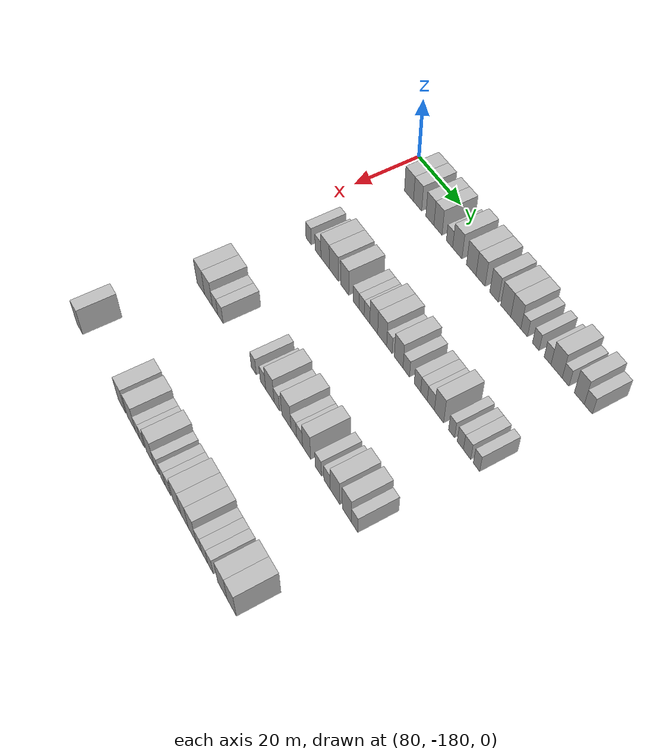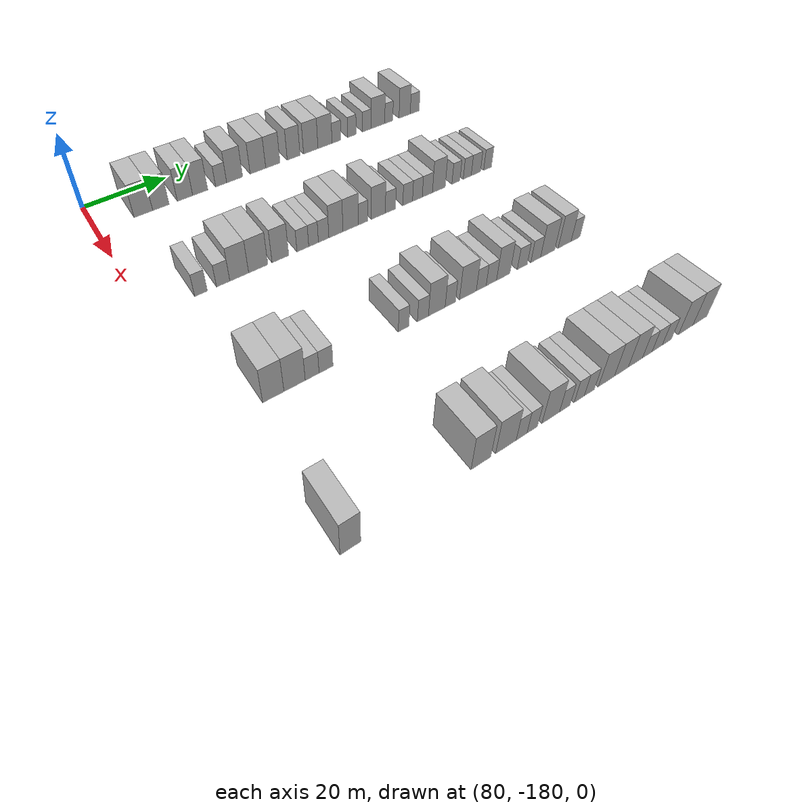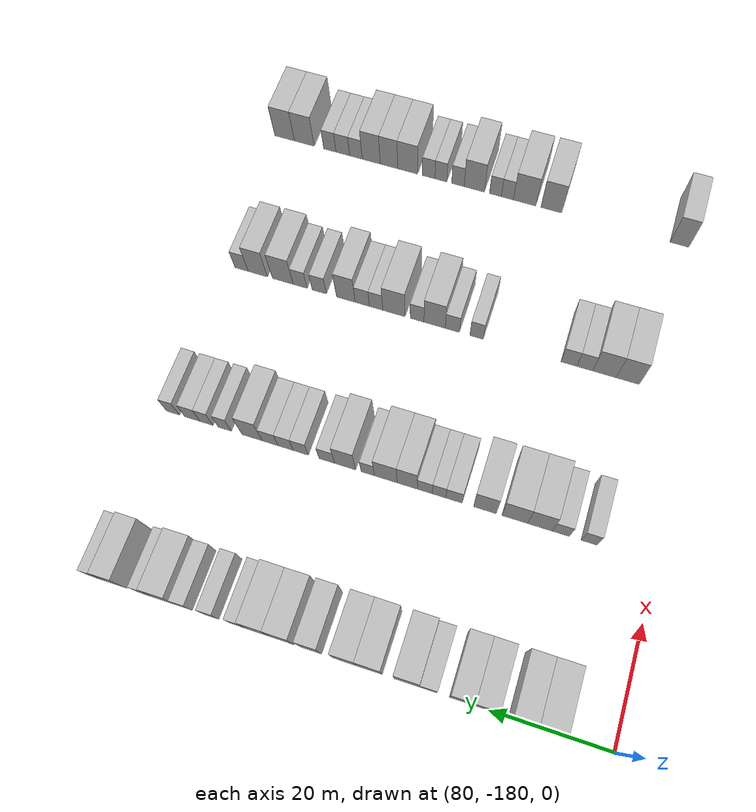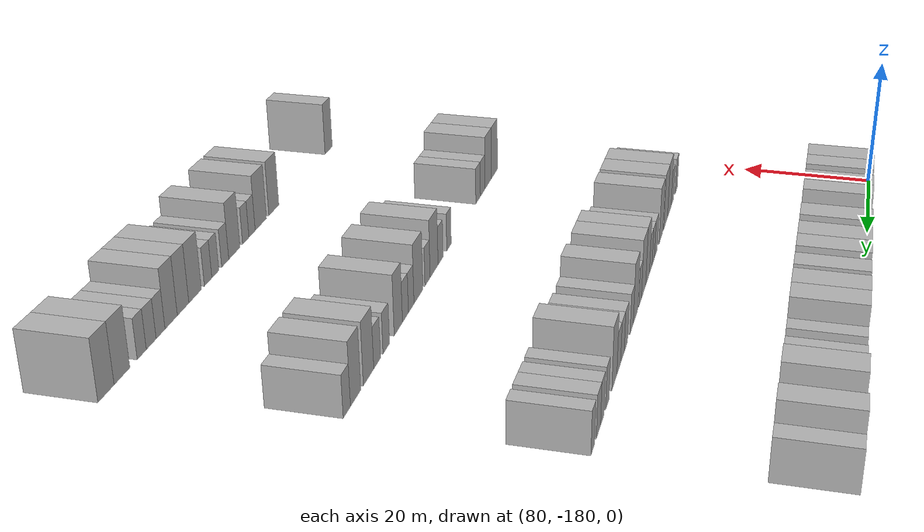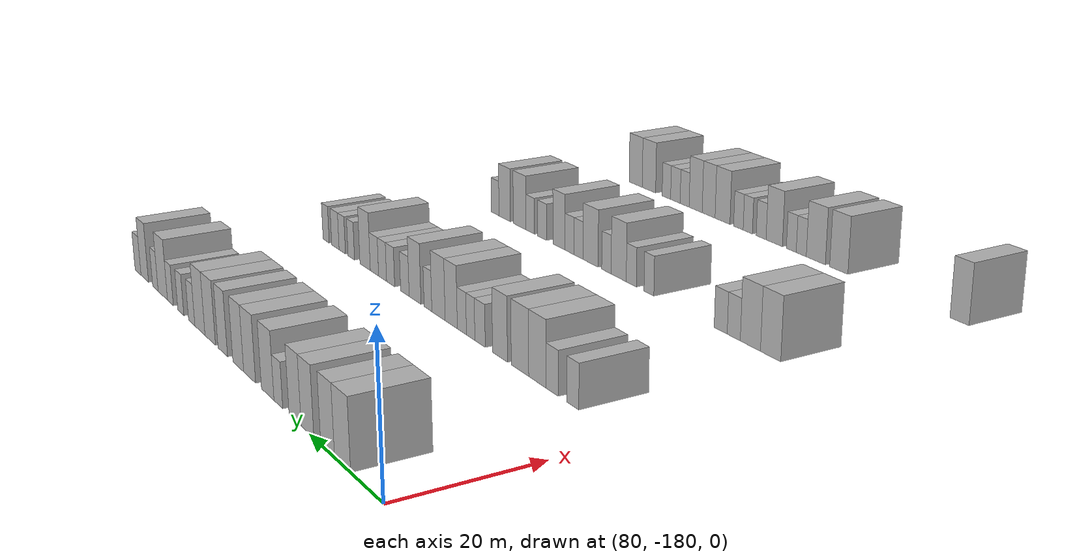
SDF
<sdf version="1.6">
 <world name="default">
  <model name="building_547">
   <static>1</static>
   <pose>85.0000 -169.3102 0 0.000000 0.000000 0.000000</pose>
   <link name="link">
    <pose>0 0 4.50 0 0 0</pose>
    <collision name="collision"><geometry><box><size>10.0000 4.3740 9.0000</size></box></geometry></collision>
    <visual name="visual">
     <cast_shadows>0</cast_shadows>
     <geometry><box><size>10.0000 4.3740 9.0000</size></box></geometry>
     <material>
      <script>
       <uri>model://HANNAS_wall/materials/scripts</uri>
       <uri>model://HANNAS_wall/materials/textures</uri>
       <name>vrc/HANNAS_wall</name>
      </script>
     </material>
    </visual>
   </link>
  </model>
  <model name="building_548">
   <static>1</static>
   <pose>85.0000 -165.1640 0 0.000000 0.000000 0.000000</pose>
   <link name="link">
    <pose>0 0 4.50 0 0 0</pose>
    <collision name="collision"><geometry><box><size>10.0000 3.9186 9.0000</size></box></geometry></collision>
    <visual name="visual">
     <cast_shadows>0</cast_shadows>
     <geometry><box><size>10.0000 3.9186 9.0000</size></box></geometry>
     <material>
      <script>
       <uri>model://HANNAS_wall/materials/scripts</uri>
       <uri>model://HANNAS_wall/materials/textures</uri>
       <name>vrc/HANNAS_wall</name>
      </script>
     </material>
    </visual>
   </link>
  </model>
  <model name="building_549">
   <static>1</static>
   <pose>85.0000 -159.3094 0 0.000000 0.000000 0.000000</pose>
   <link name="link">
    <pose>0 0 4.50 0 0 0</pose>
    <collision name="collision"><geometry><box><size>10.0000 3.7906 9.0000</size></box></geometry></collision>
    <visual name="visual">
     <cast_shadows>0</cast_shadows>
     <geometry><box><size>10.0000 3.7906 9.0000</size></box></geometry>
     <material>
      <script>
       <uri>model://HANNAS_wall/materials/scripts</uri>
       <uri>model://HANNAS_wall/materials/textures</uri>
       <name>vrc/HANNAS_wall</name>
      </script>
     </material>
    </visual>
   </link>
  </model>
  <model name="building_550">
   <static>1</static>
   <pose>85.0000 -155.5352 0 0.000000 0.000000 0.000000</pose>
   <link name="link">
    <pose>0 0 4.50 0 0 0</pose>
    <collision name="collision"><geometry><box><size>10.0000 3.7577 9.0000</size></box></geometry></collision>
    <visual name="visual">
     <cast_shadows>0</cast_shadows>
     <geometry><box><size>10.0000 3.7577 9.0000</size></box></geometry>
     <material>
      <script>
       <uri>model://HANNAS_wall/materials/scripts</uri>
       <uri>model://HANNAS_wall/materials/textures</uri>
       <name>vrc/HANNAS_wall</name>
      </script>
     </material>
    </visual>
   </link>
  </model>
  <model name="building_551">
   <static>1</static>
   <pose>85.0000 -150.2387 0 0.000000 0.000000 0.000000</pose>
   <link name="link">
    <pose>0 0 3.00 0 0 0</pose>
    <collision name="collision"><geometry><box><size>10.0000 2.8354 6.0000</size></box></geometry></collision>
    <visual name="visual">
     <cast_shadows>0</cast_shadows>
     <geometry><box><size>10.0000 2.8354 6.0000</size></box></geometry>
     <material>
      <script>
       <uri>model://HANNAS_wall/materials/scripts</uri>
       <uri>model://HANNAS_wall/materials/textures</uri>
       <name>vrc/HANNAS_wall</name>
      </script>
     </material>
    </visual>
   </link>
  </model>
  <model name="building_552">
   <static>1</static>
   <pose>85.0000 -146.7274 0 0.000000 0.000000 0.000000</pose>
   <link name="link">
    <pose>0 0 4.50 0 0 0</pose>
    <collision name="collision"><geometry><box><size>10.0000 4.1871 9.0000</size></box></geometry></collision>
    <visual name="visual">
     <cast_shadows>0</cast_shadows>
     <geometry><box><size>10.0000 4.1871 9.0000</size></box></geometry>
     <material>
      <script>
       <uri>model://HANNAS_wall/materials/scripts</uri>
       <uri>model://HANNAS_wall/materials/textures</uri>
       <name>vrc/HANNAS_wall</name>
      </script>
     </material>
    </visual>
   </link>
  </model>
  <model name="building_553">
   <static>1</static>
   <pose>85.0000 -140.5413 0 0.000000 0.000000 0.000000</pose>
   <link name="link">
    <pose>0 0 4.50 0 0 0</pose>
    <collision name="collision"><geometry><box><size>10.0000 4.1851 9.0000</size></box></geometry></collision>
    <visual name="visual">
     <cast_shadows>0</cast_shadows>
     <geometry><box><size>10.0000 4.1851 9.0000</size></box></geometry>
     <material>
      <script>
       <uri>model://HANNAS_wall/materials/scripts</uri>
       <uri>model://HANNAS_wall/materials/textures</uri>
       <name>vrc/HANNAS_wall</name>
      </script>
     </material>
    </visual>
   </link>
  </model>
  <model name="building_554">
   <static>1</static>
   <pose>85.0000 -136.4818 0 0.000000 0.000000 0.000000</pose>
   <link name="link">
    <pose>0 0 4.50 0 0 0</pose>
    <collision name="collision"><geometry><box><size>10.0000 3.9339 9.0000</size></box></geometry></collision>
    <visual name="visual">
     <cast_shadows>0</cast_shadows>
     <geometry><box><size>10.0000 3.9339 9.0000</size></box></geometry>
     <material>
      <script>
       <uri>model://HANNAS_wall/materials/scripts</uri>
       <uri>model://HANNAS_wall/materials/textures</uri>
       <name>vrc/HANNAS_wall</name>
      </script>
     </material>
    </visual>
   </link>
  </model>
  <model name="building_555">
   <static>1</static>
   <pose>85.0000 -130.7133 0 0.000000 0.000000 0.000000</pose>
   <link name="link">
    <pose>0 0 4.50 0 0 0</pose>
    <collision name="collision"><geometry><box><size>10.0000 3.6031 9.0000</size></box></geometry></collision>
    <visual name="visual">
     <cast_shadows>0</cast_shadows>
     <geometry><box><size>10.0000 3.6031 9.0000</size></box></geometry>
     <material>
      <script>
       <uri>model://HANNAS_wall/materials/scripts</uri>
       <uri>model://HANNAS_wall/materials/textures</uri>
       <name>vrc/HANNAS_wall</name>
      </script>
     </material>
    </visual>
   </link>
  </model>
  <model name="building_556">
   <static>1</static>
   <pose>85.0000 -125.8333 0 0.000000 0.000000 0.000000</pose>
   <link name="link">
    <pose>0 0 4.50 0 0 0</pose>
    <collision name="collision"><geometry><box><size>10.0000 4.1570 9.0000</size></box></geometry></collision>
    <visual name="visual">
     <cast_shadows>0</cast_shadows>
     <geometry><box><size>10.0000 4.1570 9.0000</size></box></geometry>
     <material>
      <script>
       <uri>model://HANNAS_wall/materials/scripts</uri>
       <uri>model://HANNAS_wall/materials/textures</uri>
       <name>vrc/HANNAS_wall</name>
      </script>
     </material>
    </visual>
   </link>
  </model>
  <model name="building_557">
   <static>1</static>
   <pose>85.0000 -121.6883 0 0.000000 0.000000 0.000000</pose>
   <link name="link">
    <pose>0 0 4.50 0 0 0</pose>
    <collision name="collision"><geometry><box><size>10.0000 4.1330 9.0000</size></box></geometry></collision>
    <visual name="visual">
     <cast_shadows>0</cast_shadows>
     <geometry><box><size>10.0000 4.1330 9.0000</size></box></geometry>
     <material>
      <script>
       <uri>model://HANNAS_wall/materials/scripts</uri>
       <uri>model://HANNAS_wall/materials/textures</uri>
       <name>vrc/HANNAS_wall</name>
      </script>
     </material>
    </visual>
   </link>
  </model>
  <model name="building_558">
   <static>1</static>
   <pose>85.0000 -118.2937 0 0.000000 0.000000 0.000000</pose>
   <link name="link">
    <pose>0 0 3.00 0 0 0</pose>
    <collision name="collision"><geometry><box><size>10.0000 2.6562 6.0000</size></box></geometry></collision>
    <visual name="visual">
     <cast_shadows>0</cast_shadows>
     <geometry><box><size>10.0000 2.6562 6.0000</size></box></geometry>
     <material>
      <script>
       <uri>model://HANNAS_wall/materials/scripts</uri>
       <uri>model://HANNAS_wall/materials/textures</uri>
       <name>vrc/HANNAS_wall</name>
      </script>
     </material>
    </visual>
   </link>
  </model>
  <model name="building_559">
   <static>1</static>
   <pose>85.0000 -113.6614 0 0.000000 0.000000 0.000000</pose>
   <link name="link">
    <pose>0 0 3.00 0 0 0</pose>
    <collision name="collision"><geometry><box><size>10.0000 2.6083 6.0000</size></box></geometry></collision>
    <visual name="visual">
     <cast_shadows>0</cast_shadows>
     <geometry><box><size>10.0000 2.6083 6.0000</size></box></geometry>
     <material>
      <script>
       <uri>model://HANNAS_wall/materials/scripts</uri>
       <uri>model://HANNAS_wall/materials/textures</uri>
       <name>vrc/HANNAS_wall</name>
      </script>
     </material>
    </visual>
   </link>
  </model>
  <model name="building_560">
   <static>1</static>
   <pose>85.0000 -109.0455 0 0.000000 0.000000 0.000000</pose>
   <link name="link">
    <pose>0 0 3.00 0 0 0</pose>
    <collision name="collision"><geometry><box><size>10.0000 2.6236 6.0000</size></box></geometry></collision>
    <visual name="visual">
     <cast_shadows>0</cast_shadows>
     <geometry><box><size>10.0000 2.6236 6.0000</size></box></geometry>
     <material>
      <script>
       <uri>model://HANNAS_wall/materials/scripts</uri>
       <uri>model://HANNAS_wall/materials/textures</uri>
       <name>vrc/HANNAS_wall</name>
      </script>
     </material>
    </visual>
   </link>
  </model>
  <model name="building_561">
   <static>1</static>
   <pose>85.0000 -105.5819 0 0.000000 0.000000 0.000000</pose>
   <link name="link">
    <pose>0 0 4.50 0 0 0</pose>
    <collision name="collision"><geometry><box><size>10.0000 4.3037 9.0000</size></box></geometry></collision>
    <visual name="visual">
     <cast_shadows>0</cast_shadows>
     <geometry><box><size>10.0000 4.3037 9.0000</size></box></geometry>
     <material>
      <script>
       <uri>model://HANNAS_wall/materials/scripts</uri>
       <uri>model://HANNAS_wall/materials/textures</uri>
       <name>vrc/HANNAS_wall</name>
      </script>
     </material>
    </visual>
   </link>
  </model>
  <model name="building_562">
   <static>1</static>
   <pose>85.0000 -102.1422 0 0.000000 0.000000 0.000000</pose>
   <link name="link">
    <pose>0 0 3.00 0 0 0</pose>
    <collision name="collision"><geometry><box><size>10.0000 2.5757 6.0000</size></box></geometry></collision>
    <visual name="visual">
     <cast_shadows>0</cast_shadows>
     <geometry><box><size>10.0000 2.5757 6.0000</size></box></geometry>
     <material>
      <script>
       <uri>model://HANNAS_wall/materials/scripts</uri>
       <uri>model://HANNAS_wall/materials/textures</uri>
       <name>vrc/HANNAS_wall</name>
      </script>
     </material>
    </visual>
   </link>
  </model>
  <model name="building_563">
   <static>1</static>
   <pose>85.0000 -97.0147 0 0.000000 0.000000 0.000000</pose>
   <link name="link">
    <pose>0 0 4.50 0 0 0</pose>
    <collision name="collision"><geometry><box><size>10.0000 3.6792 9.0000</size></box></geometry></collision>
    <visual name="visual">
     <cast_shadows>0</cast_shadows>
     <geometry><box><size>10.0000 3.6792 9.0000</size></box></geometry>
     <material>
      <script>
       <uri>model://HANNAS_wall/materials/scripts</uri>
       <uri>model://HANNAS_wall/materials/textures</uri>
       <name>vrc/HANNAS_wall</name>
      </script>
     </material>
    </visual>
   </link>
  </model>
  <model name="building_564">
   <static>1</static>
   <pose>85.0000 -93.7033 0 0.000000 0.000000 0.000000</pose>
   <link name="link">
    <pose>0 0 3.00 0 0 0</pose>
    <collision name="collision"><geometry><box><size>10.0000 2.9437 6.0000</size></box></geometry></collision>
    <visual name="visual">
     <cast_shadows>0</cast_shadows>
     <geometry><box><size>10.0000 2.9437 6.0000</size></box></geometry>
     <material>
      <script>
       <uri>model://HANNAS_wall/materials/scripts</uri>
       <uri>model://HANNAS_wall/materials/textures</uri>
       <name>vrc/HANNAS_wall</name>
      </script>
     </material>
    </visual>
   </link>
  </model>
  <model name="building_784">
   <static>1</static>
   <pose>115.0000 -168.7538 0 0.000000 0.000000 0.000000</pose>
   <link name="link">
    <pose>0 0 3.00 0 0 0</pose>
    <collision name="collision"><geometry><box><size>10.0000 2.7302 6.0000</size></box></geometry></collision>
    <visual name="visual">
     <cast_shadows>0</cast_shadows>
     <geometry><box><size>10.0000 2.7302 6.0000</size></box></geometry>
     <material>
      <script>
       <uri>model://HANNAS_wall/materials/scripts</uri>
       <uri>model://HANNAS_wall/materials/textures</uri>
       <name>vrc/HANNAS_wall</name>
      </script>
     </material>
    </visual>
   </link>
  </model>
  <model name="building_785">
   <static>1</static>
   <pose>115.0000 -163.9118 0 0.000000 0.000000 0.000000</pose>
   <link name="link">
    <pose>0 0 3.00 0 0 0</pose>
    <collision name="collision"><geometry><box><size>10.0000 2.9538 6.0000</size></box></geometry></collision>
    <visual name="visual">
     <cast_shadows>0</cast_shadows>
     <geometry><box><size>10.0000 2.9538 6.0000</size></box></geometry>
     <material>
      <script>
       <uri>model://HANNAS_wall/materials/scripts</uri>
       <uri>model://HANNAS_wall/materials/textures</uri>
       <name>vrc/HANNAS_wall</name>
      </script>
     </material>
    </visual>
   </link>
  </model>
  <model name="building_786">
   <static>1</static>
   <pose>115.0000 -160.3102 0 0.000000 0.000000 0.000000</pose>
   <link name="link">
    <pose>0 0 4.50 0 0 0</pose>
    <collision name="collision"><geometry><box><size>10.0000 4.2494 9.0000</size></box></geometry></collision>
    <visual name="visual">
     <cast_shadows>0</cast_shadows>
     <geometry><box><size>10.0000 4.2494 9.0000</size></box></geometry>
     <material>
      <script>
       <uri>model://HANNAS_wall/materials/scripts</uri>
       <uri>model://HANNAS_wall/materials/textures</uri>
       <name>vrc/HANNAS_wall</name>
      </script>
     </material>
    </visual>
   </link>
  </model>
  <model name="building_787">
   <static>1</static>
   <pose>115.0000 -155.9661 0 0.000000 0.000000 0.000000</pose>
   <link name="link">
    <pose>0 0 4.50 0 0 0</pose>
    <collision name="collision"><geometry><box><size>10.0000 4.4389 9.0000</size></box></geometry></collision>
    <visual name="visual">
     <cast_shadows>0</cast_shadows>
     <geometry><box><size>10.0000 4.4389 9.0000</size></box></geometry>
     <material>
      <script>
       <uri>model://HANNAS_wall/materials/scripts</uri>
       <uri>model://HANNAS_wall/materials/textures</uri>
       <name>vrc/HANNAS_wall</name>
      </script>
     </material>
    </visual>
   </link>
  </model>
  <model name="building_788">
   <static>1</static>
   <pose>115.0000 -150.7684 0 0.000000 0.000000 0.000000</pose>
   <link name="link">
    <pose>0 0 4.50 0 0 0</pose>
    <collision name="collision"><geometry><box><size>10.0000 3.9566 9.0000</size></box></geometry></collision>
    <visual name="visual">
     <cast_shadows>0</cast_shadows>
     <geometry><box><size>10.0000 3.9566 9.0000</size></box></geometry>
     <material>
      <script>
       <uri>model://HANNAS_wall/materials/scripts</uri>
       <uri>model://HANNAS_wall/materials/textures</uri>
       <name>vrc/HANNAS_wall</name>
      </script>
     </material>
    </visual>
   </link>
  </model>
  <model name="building_789">
   <static>1</static>
   <pose>115.0000 -145.3490 0 0.000000 0.000000 0.000000</pose>
   <link name="link">
    <pose>0 0 3.00 0 0 0</pose>
    <collision name="collision"><geometry><box><size>10.0000 2.8821 6.0000</size></box></geometry></collision>
    <visual name="visual">
     <cast_shadows>0</cast_shadows>
     <geometry><box><size>10.0000 2.8821 6.0000</size></box></geometry>
     <material>
      <script>
       <uri>model://HANNAS_wall/materials/scripts</uri>
       <uri>model://HANNAS_wall/materials/textures</uri>
       <name>vrc/HANNAS_wall</name>
      </script>
     </material>
    </visual>
   </link>
  </model>
  <model name="building_790">
   <static>1</static>
   <pose>115.0000 -142.7071 0 0.000000 0.000000 0.000000</pose>
   <link name="link">
    <pose>0 0 3.00 0 0 0</pose>
    <collision name="collision"><geometry><box><size>10.0000 2.4017 6.0000</size></box></geometry></collision>
    <visual name="visual">
     <cast_shadows>0</cast_shadows>
     <geometry><box><size>10.0000 2.4017 6.0000</size></box></geometry>
     <material>
      <script>
       <uri>model://HANNAS_wall/materials/scripts</uri>
       <uri>model://HANNAS_wall/materials/textures</uri>
       <name>vrc/HANNAS_wall</name>
      </script>
     </material>
    </visual>
   </link>
  </model>
  <model name="building_791">
   <static>1</static>
   <pose>115.0000 -140.1959 0 0.000000 0.000000 0.000000</pose>
   <link name="link">
    <pose>0 0 3.00 0 0 0</pose>
    <collision name="collision"><geometry><box><size>10.0000 2.6207 6.0000</size></box></geometry></collision>
    <visual name="visual">
     <cast_shadows>0</cast_shadows>
     <geometry><box><size>10.0000 2.6207 6.0000</size></box></geometry>
     <material>
      <script>
       <uri>model://HANNAS_wall/materials/scripts</uri>
       <uri>model://HANNAS_wall/materials/textures</uri>
       <name>vrc/HANNAS_wall</name>
      </script>
     </material>
    </visual>
   </link>
  </model>
  <model name="building_792">
   <static>1</static>
   <pose>115.0000 -137.0826 0 0.000000 0.000000 0.000000</pose>
   <link name="link">
    <pose>0 0 4.50 0 0 0</pose>
    <collision name="collision"><geometry><box><size>10.0000 3.6060 9.0000</size></box></geometry></collision>
    <visual name="visual">
     <cast_shadows>0</cast_shadows>
     <geometry><box><size>10.0000 3.6060 9.0000</size></box></geometry>
     <material>
      <script>
       <uri>model://HANNAS_wall/materials/scripts</uri>
       <uri>model://HANNAS_wall/materials/textures</uri>
       <name>vrc/HANNAS_wall</name>
      </script>
     </material>
    </visual>
   </link>
  </model>
  <model name="building_793">
   <static>1</static>
   <pose>115.0000 -133.2486 0 0.000000 0.000000 0.000000</pose>
   <link name="link">
    <pose>0 0 4.50 0 0 0</pose>
    <collision name="collision"><geometry><box><size>10.0000 4.0619 9.0000</size></box></geometry></collision>
    <visual name="visual">
     <cast_shadows>0</cast_shadows>
     <geometry><box><size>10.0000 4.0619 9.0000</size></box></geometry>
     <material>
      <script>
       <uri>model://HANNAS_wall/materials/scripts</uri>
       <uri>model://HANNAS_wall/materials/textures</uri>
       <name>vrc/HANNAS_wall</name>
      </script>
     </material>
    </visual>
   </link>
  </model>
  <model name="building_794">
   <static>1</static>
   <pose>115.0000 -130.0116 0 0.000000 0.000000 0.000000</pose>
   <link name="link">
    <pose>0 0 3.00 0 0 0</pose>
    <collision name="collision"><geometry><box><size>10.0000 2.4121 6.0000</size></box></geometry></collision>
    <visual name="visual">
     <cast_shadows>0</cast_shadows>
     <geometry><box><size>10.0000 2.4121 6.0000</size></box></geometry>
     <material>
      <script>
       <uri>model://HANNAS_wall/materials/scripts</uri>
       <uri>model://HANNAS_wall/materials/textures</uri>
       <name>vrc/HANNAS_wall</name>
      </script>
     </material>
    </visual>
   </link>
  </model>
  <model name="building_795">
   <static>1</static>
   <pose>115.0000 -125.9079 0 0.000000 0.000000 0.000000</pose>
   <link name="link">
    <pose>0 0 4.50 0 0 0</pose>
    <collision name="collision"><geometry><box><size>10.0000 3.7953 9.0000</size></box></geometry></collision>
    <visual name="visual">
     <cast_shadows>0</cast_shadows>
     <geometry><box><size>10.0000 3.7953 9.0000</size></box></geometry>
     <material>
      <script>
       <uri>model://HANNAS_wall/materials/scripts</uri>
       <uri>model://HANNAS_wall/materials/textures</uri>
       <name>vrc/HANNAS_wall</name>
      </script>
     </material>
    </visual>
   </link>
  </model>
  <model name="building_796">
   <static>1</static>
   <pose>115.0000 -122.6027 0 0.000000 0.000000 0.000000</pose>
   <link name="link">
    <pose>0 0 3.00 0 0 0</pose>
    <collision name="collision"><geometry><box><size>10.0000 2.8150 6.0000</size></box></geometry></collision>
    <visual name="visual">
     <cast_shadows>0</cast_shadows>
     <geometry><box><size>10.0000 2.8150 6.0000</size></box></geometry>
     <material>
      <script>
       <uri>model://HANNAS_wall/materials/scripts</uri>
       <uri>model://HANNAS_wall/materials/textures</uri>
       <name>vrc/HANNAS_wall</name>
      </script>
     </material>
    </visual>
   </link>
  </model>
  <model name="building_797">
   <static>1</static>
   <pose>115.0000 -117.8180 0 0.000000 0.000000 0.000000</pose>
   <link name="link">
    <pose>0 0 3.00 0 0 0</pose>
    <collision name="collision"><geometry><box><size>10.0000 2.7544 6.0000</size></box></geometry></collision>
    <visual name="visual">
     <cast_shadows>0</cast_shadows>
     <geometry><box><size>10.0000 2.7544 6.0000</size></box></geometry>
     <material>
      <script>
       <uri>model://HANNAS_wall/materials/scripts</uri>
       <uri>model://HANNAS_wall/materials/textures</uri>
       <name>vrc/HANNAS_wall</name>
      </script>
     </material>
    </visual>
   </link>
  </model>
  <model name="building_798">
   <static>1</static>
   <pose>115.0000 -115.0493 0 0.000000 0.000000 0.000000</pose>
   <link name="link">
    <pose>0 0 3.00 0 0 0</pose>
    <collision name="collision"><geometry><box><size>10.0000 2.7830 6.0000</size></box></geometry></collision>
    <visual name="visual">
     <cast_shadows>0</cast_shadows>
     <geometry><box><size>10.0000 2.7830 6.0000</size></box></geometry>
     <material>
      <script>
       <uri>model://HANNAS_wall/materials/scripts</uri>
       <uri>model://HANNAS_wall/materials/textures</uri>
       <name>vrc/HANNAS_wall</name>
      </script>
     </material>
    </visual>
   </link>
  </model>
  <model name="building_799">
   <static>1</static>
   <pose>115.0000 -112.1875 0 0.000000 0.000000 0.000000</pose>
   <link name="link">
    <pose>0 0 3.00 0 0 0</pose>
    <collision name="collision"><geometry><box><size>10.0000 2.9405 6.0000</size></box></geometry></collision>
    <visual name="visual">
     <cast_shadows>0</cast_shadows>
     <geometry><box><size>10.0000 2.9405 6.0000</size></box></geometry>
     <material>
      <script>
       <uri>model://HANNAS_wall/materials/scripts</uri>
       <uri>model://HANNAS_wall/materials/textures</uri>
       <name>vrc/HANNAS_wall</name>
      </script>
     </material>
    </visual>
   </link>
  </model>
  <model name="building_800">
   <static>1</static>
   <pose>115.0000 -108.8350 0 0.000000 0.000000 0.000000</pose>
   <link name="link">
    <pose>0 0 4.50 0 0 0</pose>
    <collision name="collision"><geometry><box><size>10.0000 3.7645 9.0000</size></box></geometry></collision>
    <visual name="visual">
     <cast_shadows>0</cast_shadows>
     <geometry><box><size>10.0000 3.7645 9.0000</size></box></geometry>
     <material>
      <script>
       <uri>model://HANNAS_wall/materials/scripts</uri>
       <uri>model://HANNAS_wall/materials/textures</uri>
       <name>vrc/HANNAS_wall</name>
      </script>
     </material>
    </visual>
   </link>
  </model>
  <model name="building_801">
   <static>1</static>
   <pose>115.0000 -103.7379 0 0.000000 0.000000 0.000000</pose>
   <link name="link">
    <pose>0 0 3.00 0 0 0</pose>
    <collision name="collision"><geometry><box><size>10.0000 2.4298 6.0000</size></box></geometry></collision>
    <visual name="visual">
     <cast_shadows>0</cast_shadows>
     <geometry><box><size>10.0000 2.4298 6.0000</size></box></geometry>
     <material>
      <script>
       <uri>model://HANNAS_wall/materials/scripts</uri>
       <uri>model://HANNAS_wall/materials/textures</uri>
       <name>vrc/HANNAS_wall</name>
      </script>
     </material>
    </visual>
   </link>
  </model>
  <model name="building_802">
   <static>1</static>
   <pose>115.0000 -100.2994 0 0.000000 0.000000 0.000000</pose>
   <link name="link">
    <pose>0 0 3.00 0 0 0</pose>
    <collision name="collision"><geometry><box><size>10.0000 2.4471 6.0000</size></box></geometry></collision>
    <visual name="visual">
     <cast_shadows>0</cast_shadows>
     <geometry><box><size>10.0000 2.4471 6.0000</size></box></geometry>
     <material>
      <script>
       <uri>model://HANNAS_wall/materials/scripts</uri>
       <uri>model://HANNAS_wall/materials/textures</uri>
       <name>vrc/HANNAS_wall</name>
      </script>
     </material>
    </visual>
   </link>
  </model>
  <model name="building_803">
   <static>1</static>
   <pose>115.0000 -97.6379 0 0.000000 0.000000 0.000000</pose>
   <link name="link">
    <pose>0 0 3.00 0 0 0</pose>
    <collision name="collision"><geometry><box><size>10.0000 2.8759 6.0000</size></box></geometry></collision>
    <visual name="visual">
     <cast_shadows>0</cast_shadows>
     <geometry><box><size>10.0000 2.8759 6.0000</size></box></geometry>
     <material>
      <script>
       <uri>model://HANNAS_wall/materials/scripts</uri>
       <uri>model://HANNAS_wall/materials/textures</uri>
       <name>vrc/HANNAS_wall</name>
      </script>
     </material>
    </visual>
   </link>
  </model>
  <model name="building_804">
   <static>1</static>
   <pose>115.0000 -93.9739 0 0.000000 0.000000 0.000000</pose>
   <link name="link">
    <pose>0 0 3.00 0 0 0</pose>
    <collision name="collision"><geometry><box><size>10.0000 2.4521 6.0000</size></box></geometry></collision>
    <visual name="visual">
     <cast_shadows>0</cast_shadows>
     <geometry><box><size>10.0000 2.4521 6.0000</size></box></geometry>
     <material>
      <script>
       <uri>model://HANNAS_wall/materials/scripts</uri>
       <uri>model://HANNAS_wall/materials/textures</uri>
       <name>vrc/HANNAS_wall</name>
      </script>
     </material>
    </visual>
   </link>
  </model>
  <model name="building_1021">
   <static>1</static>
   <pose>145.0000 -168.5334 0 0.000000 0.000000 0.000000</pose>
   <link name="link">
    <pose>0 0 4.50 0 0 0</pose>
    <collision name="collision"><geometry><box><size>10.0000 4.2034 9.0000</size></box></geometry></collision>
    <visual name="visual">
     <cast_shadows>0</cast_shadows>
     <geometry><box><size>10.0000 4.2034 9.0000</size></box></geometry>
     <material>
      <script>
       <uri>model://HANNAS_wall/materials/scripts</uri>
       <uri>model://HANNAS_wall/materials/textures</uri>
       <name>vrc/HANNAS_wall</name>
      </script>
     </material>
    </visual>
   </link>
  </model>
  <model name="building_1022">
   <static>1</static>
   <pose>145.0000 -164.2758 0 0.000000 0.000000 0.000000</pose>
   <link name="link">
    <pose>0 0 4.50 0 0 0</pose>
    <collision name="collision"><geometry><box><size>10.0000 4.3117 9.0000</size></box></geometry></collision>
    <visual name="visual">
     <cast_shadows>0</cast_shadows>
     <geometry><box><size>10.0000 4.3117 9.0000</size></box></geometry>
     <material>
      <script>
       <uri>model://HANNAS_wall/materials/scripts</uri>
       <uri>model://HANNAS_wall/materials/textures</uri>
       <name>vrc/HANNAS_wall</name>
      </script>
     </material>
    </visual>
   </link>
  </model>
  <model name="building_1023">
   <static>1</static>
   <pose>145.0000 -160.6826 0 0.000000 0.000000 0.000000</pose>
   <link name="link">
    <pose>0 0 3.00 0 0 0</pose>
    <collision name="collision"><geometry><box><size>10.0000 2.8749 6.0000</size></box></geometry></collision>
    <visual name="visual">
     <cast_shadows>0</cast_shadows>
     <geometry><box><size>10.0000 2.8749 6.0000</size></box></geometry>
     <material>
      <script>
       <uri>model://HANNAS_wall/materials/scripts</uri>
       <uri>model://HANNAS_wall/materials/textures</uri>
       <name>vrc/HANNAS_wall</name>
      </script>
     </material>
    </visual>
   </link>
  </model>
  <model name="building_1024">
   <static>1</static>
   <pose>145.0000 -157.7820 0 0.000000 0.000000 0.000000</pose>
   <link name="link">
    <pose>0 0 3.00 0 0 0</pose>
    <collision name="collision"><geometry><box><size>10.0000 2.9263 6.0000</size></box></geometry></collision>
    <visual name="visual">
     <cast_shadows>0</cast_shadows>
     <geometry><box><size>10.0000 2.9263 6.0000</size></box></geometry>
     <material>
      <script>
       <uri>model://HANNAS_wall/materials/scripts</uri>
       <uri>model://HANNAS_wall/materials/textures</uri>
       <name>vrc/HANNAS_wall</name>
      </script>
     </material>
    </visual>
   </link>
  </model>
  <model name="building_1025">
   <static>1</static>
   <pose>145.0000 -140.5679 0 0.000000 0.000000 0.000000</pose>
   <link name="link">
    <pose>0 0 3.00 0 0 0</pose>
    <collision name="collision"><geometry><box><size>10.0000 2.5006 6.0000</size></box></geometry></collision>
    <visual name="visual">
     <cast_shadows>0</cast_shadows>
     <geometry><box><size>10.0000 2.5006 6.0000</size></box></geometry>
     <material>
      <script>
       <uri>model://HANNAS_wall/materials/scripts</uri>
       <uri>model://HANNAS_wall/materials/textures</uri>
       <name>vrc/HANNAS_wall</name>
      </script>
     </material>
    </visual>
   </link>
  </model>
  <model name="building_1026">
   <static>1</static>
   <pose>145.0000 -135.9825 0 0.000000 0.000000 0.000000</pose>
   <link name="link">
    <pose>0 0 3.00 0 0 0</pose>
    <collision name="collision"><geometry><box><size>10.0000 2.6702 6.0000</size></box></geometry></collision>
    <visual name="visual">
     <cast_shadows>0</cast_shadows>
     <geometry><box><size>10.0000 2.6702 6.0000</size></box></geometry>
     <material>
      <script>
       <uri>model://HANNAS_wall/materials/scripts</uri>
       <uri>model://HANNAS_wall/materials/textures</uri>
       <name>vrc/HANNAS_wall</name>
      </script>
     </material>
    </visual>
   </link>
  </model>
  <model name="building_1027">
   <static>1</static>
   <pose>145.0000 -132.6007 0 0.000000 0.000000 0.000000</pose>
   <link name="link">
    <pose>0 0 4.50 0 0 0</pose>
    <collision name="collision"><geometry><box><size>10.0000 4.0935 9.0000</size></box></geometry></collision>
    <visual name="visual">
     <cast_shadows>0</cast_shadows>
     <geometry><box><size>10.0000 4.0935 9.0000</size></box></geometry>
     <material>
      <script>
       <uri>model://HANNAS_wall/materials/scripts</uri>
       <uri>model://HANNAS_wall/materials/textures</uri>
       <name>vrc/HANNAS_wall</name>
      </script>
     </material>
    </visual>
   </link>
  </model>
  <model name="building_1028">
   <static>1</static>
   <pose>145.0000 -129.2540 0 0.000000 0.000000 0.000000</pose>
   <link name="link">
    <pose>0 0 3.00 0 0 0</pose>
    <collision name="collision"><geometry><box><size>10.0000 2.5999 6.0000</size></box></geometry></collision>
    <visual name="visual">
     <cast_shadows>0</cast_shadows>
     <geometry><box><size>10.0000 2.5999 6.0000</size></box></geometry>
     <material>
      <script>
       <uri>model://HANNAS_wall/materials/scripts</uri>
       <uri>model://HANNAS_wall/materials/textures</uri>
       <name>vrc/HANNAS_wall</name>
      </script>
     </material>
    </visual>
   </link>
  </model>
  <model name="building_1029">
   <static>1</static>
   <pose>145.0000 -124.8027 0 0.000000 0.000000 0.000000</pose>
   <link name="link">
    <pose>0 0 4.50 0 0 0</pose>
    <collision name="collision"><geometry><box><size>10.0000 4.3027 9.0000</size></box></geometry></collision>
    <visual name="visual">
     <cast_shadows>0</cast_shadows>
     <geometry><box><size>10.0000 4.3027 9.0000</size></box></geometry>
     <material>
      <script>
       <uri>model://HANNAS_wall/materials/scripts</uri>
       <uri>model://HANNAS_wall/materials/textures</uri>
       <name>vrc/HANNAS_wall</name>
      </script>
     </material>
    </visual>
   </link>
  </model>
  <model name="building_1030">
   <static>1</static>
   <pose>145.0000 -121.3573 0 0.000000 0.000000 0.000000</pose>
   <link name="link">
    <pose>0 0 3.00 0 0 0</pose>
    <collision name="collision"><geometry><box><size>10.0000 2.5881 6.0000</size></box></geometry></collision>
    <visual name="visual">
     <cast_shadows>0</cast_shadows>
     <geometry><box><size>10.0000 2.5881 6.0000</size></box></geometry>
     <material>
      <script>
       <uri>model://HANNAS_wall/materials/scripts</uri>
       <uri>model://HANNAS_wall/materials/textures</uri>
       <name>vrc/HANNAS_wall</name>
      </script>
     </material>
    </visual>
   </link>
  </model>
  <model name="building_1031">
   <static>1</static>
   <pose>145.0000 -118.6901 0 0.000000 0.000000 0.000000</pose>
   <link name="link">
    <pose>0 0 3.00 0 0 0</pose>
    <collision name="collision"><geometry><box><size>10.0000 2.7463 6.0000</size></box></geometry></collision>
    <visual name="visual">
     <cast_shadows>0</cast_shadows>
     <geometry><box><size>10.0000 2.7463 6.0000</size></box></geometry>
     <material>
      <script>
       <uri>model://HANNAS_wall/materials/scripts</uri>
       <uri>model://HANNAS_wall/materials/textures</uri>
       <name>vrc/HANNAS_wall</name>
      </script>
     </material>
    </visual>
   </link>
  </model>
  <model name="building_1032">
   <static>1</static>
   <pose>145.0000 -115.4858 0 0.000000 0.000000 0.000000</pose>
   <link name="link">
    <pose>0 0 4.50 0 0 0</pose>
    <collision name="collision"><geometry><box><size>10.0000 3.6623 9.0000</size></box></geometry></collision>
    <visual name="visual">
     <cast_shadows>0</cast_shadows>
     <geometry><box><size>10.0000 3.6623 9.0000</size></box></geometry>
     <material>
      <script>
       <uri>model://HANNAS_wall/materials/scripts</uri>
       <uri>model://HANNAS_wall/materials/textures</uri>
       <name>vrc/HANNAS_wall</name>
      </script>
     </material>
    </visual>
   </link>
  </model>
  <model name="building_1033">
   <static>1</static>
   <pose>145.0000 -110.2646 0 0.000000 0.000000 0.000000</pose>
   <link name="link">
    <pose>0 0 3.00 0 0 0</pose>
    <collision name="collision"><geometry><box><size>10.0000 2.7802 6.0000</size></box></geometry></collision>
    <visual name="visual">
     <cast_shadows>0</cast_shadows>
     <geometry><box><size>10.0000 2.7802 6.0000</size></box></geometry>
     <material>
      <script>
       <uri>model://HANNAS_wall/materials/scripts</uri>
       <uri>model://HANNAS_wall/materials/textures</uri>
       <name>vrc/HANNAS_wall</name>
      </script>
     </material>
    </visual>
   </link>
  </model>
  <model name="building_1034">
   <static>1</static>
   <pose>145.0000 -106.4885 0 0.000000 0.000000 0.000000</pose>
   <link name="link">
    <pose>0 0 3.00 0 0 0</pose>
    <collision name="collision"><geometry><box><size>10.0000 2.7720 6.0000</size></box></geometry></collision>
    <visual name="visual">
     <cast_shadows>0</cast_shadows>
     <geometry><box><size>10.0000 2.7720 6.0000</size></box></geometry>
     <material>
      <script>
       <uri>model://HANNAS_wall/materials/scripts</uri>
       <uri>model://HANNAS_wall/materials/textures</uri>
       <name>vrc/HANNAS_wall</name>
      </script>
     </material>
    </visual>
   </link>
  </model>
  <model name="building_1035">
   <static>1</static>
   <pose>145.0000 -103.0520 0 0.000000 0.000000 0.000000</pose>
   <link name="link">
    <pose>0 0 4.50 0 0 0</pose>
    <collision name="collision"><geometry><box><size>10.0000 4.1010 9.0000</size></box></geometry></collision>
    <visual name="visual">
     <cast_shadows>0</cast_shadows>
     <geometry><box><size>10.0000 4.1010 9.0000</size></box></geometry>
     <material>
      <script>
       <uri>model://HANNAS_wall/materials/scripts</uri>
       <uri>model://HANNAS_wall/materials/textures</uri>
       <name>vrc/HANNAS_wall</name>
      </script>
     </material>
    </visual>
   </link>
  </model>
  <model name="building_1036">
   <static>1</static>
   <pose>145.0000 -98.0703 0 0.000000 0.000000 0.000000</pose>
   <link name="link">
    <pose>0 0 4.50 0 0 0</pose>
    <collision name="collision"><geometry><box><size>10.0000 3.8624 9.0000</size></box></geometry></collision>
    <visual name="visual">
     <cast_shadows>0</cast_shadows>
     <geometry><box><size>10.0000 3.8624 9.0000</size></box></geometry>
     <material>
      <script>
       <uri>model://HANNAS_wall/materials/scripts</uri>
       <uri>model://HANNAS_wall/materials/textures</uri>
       <name>vrc/HANNAS_wall</name>
      </script>
     </material>
    </visual>
   </link>
  </model>
  <model name="building_1037">
   <static>1</static>
   <pose>145.0000 -94.8169 0 0.000000 0.000000 0.000000</pose>
   <link name="link">
    <pose>0 0 3.00 0 0 0</pose>
    <collision name="collision"><geometry><box><size>10.0000 2.6444 6.0000</size></box></geometry></collision>
    <visual name="visual">
     <cast_shadows>0</cast_shadows>
     <geometry><box><size>10.0000 2.6444 6.0000</size></box></geometry>
     <material>
      <script>
       <uri>model://HANNAS_wall/materials/scripts</uri>
       <uri>model://HANNAS_wall/materials/textures</uri>
       <name>vrc/HANNAS_wall</name>
      </script>
     </material>
    </visual>
   </link>
  </model>
  <model name="building_1227">
   <static>1</static>
   <pose>175.0000 -171.8062 0 0.000000 0.000000 0.000000</pose>
   <link name="link">
    <pose>0 0 4.50 0 0 0</pose>
    <collision name="collision"><geometry><box><size>10.0000 3.6231 9.0000</size></box></geometry></collision>
    <visual name="visual">
     <cast_shadows>0</cast_shadows>
     <geometry><box><size>10.0000 3.6231 9.0000</size></box></geometry>
     <material>
      <script>
       <uri>model://HANNAS_wall/materials/scripts</uri>
       <uri>model://HANNAS_wall/materials/textures</uri>
       <name>vrc/HANNAS_wall</name>
      </script>
     </material>
    </visual>
   </link>
  </model>
  <model name="building_1228">
   <static>1</static>
   <pose>175.0000 -146.7745 0 0.000000 0.000000 0.000000</pose>
   <link name="link">
    <pose>0 0 4.50 0 0 0</pose>
    <collision name="collision"><geometry><box><size>10.0000 4.1468 9.0000</size></box></geometry></collision>
    <visual name="visual">
     <cast_shadows>0</cast_shadows>
     <geometry><box><size>10.0000 4.1468 9.0000</size></box></geometry>
     <material>
      <script>
       <uri>model://HANNAS_wall/materials/scripts</uri>
       <uri>model://HANNAS_wall/materials/textures</uri>
       <name>vrc/HANNAS_wall</name>
      </script>
     </material>
    </visual>
   </link>
  </model>
  <model name="building_1229">
   <static>1</static>
   <pose>175.0000 -141.4574 0 0.000000 0.000000 0.000000</pose>
   <link name="link">
    <pose>0 0 4.50 0 0 0</pose>
    <collision name="collision"><geometry><box><size>10.0000 4.4874 9.0000</size></box></geometry></collision>
    <visual name="visual">
     <cast_shadows>0</cast_shadows>
     <geometry><box><size>10.0000 4.4874 9.0000</size></box></geometry>
     <material>
      <script>
       <uri>model://HANNAS_wall/materials/scripts</uri>
       <uri>model://HANNAS_wall/materials/textures</uri>
       <name>vrc/HANNAS_wall</name>
      </script>
     </material>
    </visual>
   </link>
  </model>
  <model name="building_1230">
   <static>1</static>
   <pose>175.0000 -138.0066 0 0.000000 0.000000 0.000000</pose>
   <link name="link">
    <pose>0 0 3.00 0 0 0</pose>
    <collision name="collision"><geometry><box><size>10.0000 2.4142 6.0000</size></box></geometry></collision>
    <visual name="visual">
     <cast_shadows>0</cast_shadows>
     <geometry><box><size>10.0000 2.4142 6.0000</size></box></geometry>
     <material>
      <script>
       <uri>model://HANNAS_wall/materials/scripts</uri>
       <uri>model://HANNAS_wall/materials/textures</uri>
       <name>vrc/HANNAS_wall</name>
      </script>
     </material>
    </visual>
   </link>
  </model>
  <model name="building_1231">
   <static>1</static>
   <pose>175.0000 -135.5986 0 0.000000 0.000000 0.000000</pose>
   <link name="link">
    <pose>0 0 3.00 0 0 0</pose>
    <collision name="collision"><geometry><box><size>10.0000 2.4020 6.0000</size></box></geometry></collision>
    <visual name="visual">
     <cast_shadows>0</cast_shadows>
     <geometry><box><size>10.0000 2.4020 6.0000</size></box></geometry>
     <material>
      <script>
       <uri>model://HANNAS_wall/materials/scripts</uri>
       <uri>model://HANNAS_wall/materials/textures</uri>
       <name>vrc/HANNAS_wall</name>
      </script>
     </material>
    </visual>
   </link>
  </model>
  <model name="building_1232">
   <static>1</static>
   <pose>175.0000 -131.3432 0 0.000000 0.000000 0.000000</pose>
   <link name="link">
    <pose>0 0 4.50 0 0 0</pose>
    <collision name="collision"><geometry><box><size>10.0000 4.1088 9.0000</size></box></geometry></collision>
    <visual name="visual">
     <cast_shadows>0</cast_shadows>
     <geometry><box><size>10.0000 4.1088 9.0000</size></box></geometry>
     <material>
      <script>
       <uri>model://HANNAS_wall/materials/scripts</uri>
       <uri>model://HANNAS_wall/materials/textures</uri>
       <name>vrc/HANNAS_wall</name>
      </script>
     </material>
    </visual>
   </link>
  </model>
  <model name="building_1233">
   <static>1</static>
   <pose>175.0000 -128.0258 0 0.000000 0.000000 0.000000</pose>
   <link name="link">
    <pose>0 0 3.00 0 0 0</pose>
    <collision name="collision"><geometry><box><size>10.0000 2.5259 6.0000</size></box></geometry></collision>
    <visual name="visual">
     <cast_shadows>0</cast_shadows>
     <geometry><box><size>10.0000 2.5259 6.0000</size></box></geometry>
     <material>
      <script>
       <uri>model://HANNAS_wall/materials/scripts</uri>
       <uri>model://HANNAS_wall/materials/textures</uri>
       <name>vrc/HANNAS_wall</name>
      </script>
     </material>
    </visual>
   </link>
  </model>
  <model name="building_1234">
   <static>1</static>
   <pose>175.0000 -124.5487 0 0.000000 0.000000 0.000000</pose>
   <link name="link">
    <pose>0 0 3.00 0 0 0</pose>
    <collision name="collision"><geometry><box><size>10.0000 2.4283 6.0000</size></box></geometry></collision>
    <visual name="visual">
     <cast_shadows>0</cast_shadows>
     <geometry><box><size>10.0000 2.4283 6.0000</size></box></geometry>
     <material>
      <script>
       <uri>model://HANNAS_wall/materials/scripts</uri>
       <uri>model://HANNAS_wall/materials/textures</uri>
       <name>vrc/HANNAS_wall</name>
      </script>
     </material>
    </visual>
   </link>
  </model>
  <model name="building_1235">
   <static>1</static>
   <pose>175.0000 -122.0637 0 0.000000 0.000000 0.000000</pose>
   <link name="link">
    <pose>0 0 3.00 0 0 0</pose>
    <collision name="collision"><geometry><box><size>10.0000 2.5418 6.0000</size></box></geometry></collision>
    <visual name="visual">
     <cast_shadows>0</cast_shadows>
     <geometry><box><size>10.0000 2.5418 6.0000</size></box></geometry>
     <material>
      <script>
       <uri>model://HANNAS_wall/materials/scripts</uri>
       <uri>model://HANNAS_wall/materials/textures</uri>
       <name>vrc/HANNAS_wall</name>
      </script>
     </material>
    </visual>
   </link>
  </model>
  <model name="building_1236">
   <static>1</static>
   <pose>175.0000 -117.7490 0 0.000000 0.000000 0.000000</pose>
   <link name="link">
    <pose>0 0 4.50 0 0 0</pose>
    <collision name="collision"><geometry><box><size>10.0000 4.0876 9.0000</size></box></geometry></collision>
    <visual name="visual">
     <cast_shadows>0</cast_shadows>
     <geometry><box><size>10.0000 4.0876 9.0000</size></box></geometry>
     <material>
      <script>
       <uri>model://HANNAS_wall/materials/scripts</uri>
       <uri>model://HANNAS_wall/materials/textures</uri>
       <name>vrc/HANNAS_wall</name>
      </script>
     </material>
    </visual>
   </link>
  </model>
  <model name="building_1237">
   <static>1</static>
   <pose>175.0000 -113.8889 0 0.000000 0.000000 0.000000</pose>
   <link name="link">
    <pose>0 0 4.50 0 0 0</pose>
    <collision name="collision"><geometry><box><size>10.0000 3.6326 9.0000</size></box></geometry></collision>
    <visual name="visual">
     <cast_shadows>0</cast_shadows>
     <geometry><box><size>10.0000 3.6326 9.0000</size></box></geometry>
     <material>
      <script>
       <uri>model://HANNAS_wall/materials/scripts</uri>
       <uri>model://HANNAS_wall/materials/textures</uri>
       <name>vrc/HANNAS_wall</name>
      </script>
     </material>
    </visual>
   </link>
  </model>
  <model name="building_1238">
   <static>1</static>
   <pose>175.0000 -110.1931 0 0.000000 0.000000 0.000000</pose>
   <link name="link">
    <pose>0 0 4.50 0 0 0</pose>
    <collision name="collision"><geometry><box><size>10.0000 3.7590 9.0000</size></box></geometry></collision>
    <visual name="visual">
     <cast_shadows>0</cast_shadows>
     <geometry><box><size>10.0000 3.7590 9.0000</size></box></geometry>
     <material>
      <script>
       <uri>model://HANNAS_wall/materials/scripts</uri>
       <uri>model://HANNAS_wall/materials/textures</uri>
       <name>vrc/HANNAS_wall</name>
      </script>
     </material>
    </visual>
   </link>
  </model>
  <model name="building_1239">
   <static>1</static>
   <pose>175.0000 -106.9971 0 0.000000 0.000000 0.000000</pose>
   <link name="link">
    <pose>0 0 3.00 0 0 0</pose>
    <collision name="collision"><geometry><box><size>10.0000 2.6329 6.0000</size></box></geometry></collision>
    <visual name="visual">
     <cast_shadows>0</cast_shadows>
     <geometry><box><size>10.0000 2.6329 6.0000</size></box></geometry>
     <material>
      <script>
       <uri>model://HANNAS_wall/materials/scripts</uri>
       <uri>model://HANNAS_wall/materials/textures</uri>
       <name>vrc/HANNAS_wall</name>
      </script>
     </material>
    </visual>
   </link>
  </model>
  <model name="building_1240">
   <static>1</static>
   <pose>175.0000 -104.2598 0 0.000000 0.000000 0.000000</pose>
   <link name="link">
    <pose>0 0 3.00 0 0 0</pose>
    <collision name="collision"><geometry><box><size>10.0000 2.8418 6.0000</size></box></geometry></collision>
    <visual name="visual">
     <cast_shadows>0</cast_shadows>
     <geometry><box><size>10.0000 2.8418 6.0000</size></box></geometry>
     <material>
      <script>
       <uri>model://HANNAS_wall/materials/scripts</uri>
       <uri>model://HANNAS_wall/materials/textures</uri>
       <name>vrc/HANNAS_wall</name>
      </script>
     </material>
    </visual>
   </link>
  </model>
  <model name="building_1241">
   <static>1</static>
   <pose>175.0000 -101.5526 0 0.000000 0.000000 0.000000</pose>
   <link name="link">
    <pose>0 0 3.00 0 0 0</pose>
    <collision name="collision"><geometry><box><size>10.0000 2.5726 6.0000</size></box></geometry></collision>
    <visual name="visual">
     <cast_shadows>0</cast_shadows>
     <geometry><box><size>10.0000 2.5726 6.0000</size></box></geometry>
     <material>
      <script>
       <uri>model://HANNAS_wall/materials/scripts</uri>
       <uri>model://HANNAS_wall/materials/textures</uri>
       <name>vrc/HANNAS_wall</name>
      </script>
     </material>
    </visual>
   </link>
  </model>
  <model name="building_1242">
   <static>1</static>
   <pose>175.0000 -96.1620 0 0.000000 0.000000 0.000000</pose>
   <link name="link">
    <pose>0 0 4.50 0 0 0</pose>
    <collision name="collision"><geometry><box><size>10.0000 4.2085 9.0000</size></box></geometry></collision>
    <visual name="visual">
     <cast_shadows>0</cast_shadows>
     <geometry><box><size>10.0000 4.2085 9.0000</size></box></geometry>
     <material>
      <script>
       <uri>model://HANNAS_wall/materials/scripts</uri>
       <uri>model://HANNAS_wall/materials/textures</uri>
       <name>vrc/HANNAS_wall</name>
      </script>
     </material>
    </visual>
   </link>
  </model>
  <model name="building_1243">
   <static>1</static>
   <pose>175.0000 -91.9755 0 0.000000 0.000000 0.000000</pose>
   <link name="link">
    <pose>0 0 4.50 0 0 0</pose>
    <collision name="collision"><geometry><box><size>10.0000 4.1646 9.0000</size></box></geometry></collision>
    <visual name="visual">
     <cast_shadows>0</cast_shadows>
     <geometry><box><size>10.0000 4.1646 9.0000</size></box></geometry>
     <material>
      <script>
       <uri>model://HANNAS_wall/materials/scripts</uri>
       <uri>model://HANNAS_wall/materials/textures</uri>
       <name>vrc/HANNAS_wall</name>
      </script>
     </material>
    </visual>
   </link>
  </model>
 </world>
</sdf>
